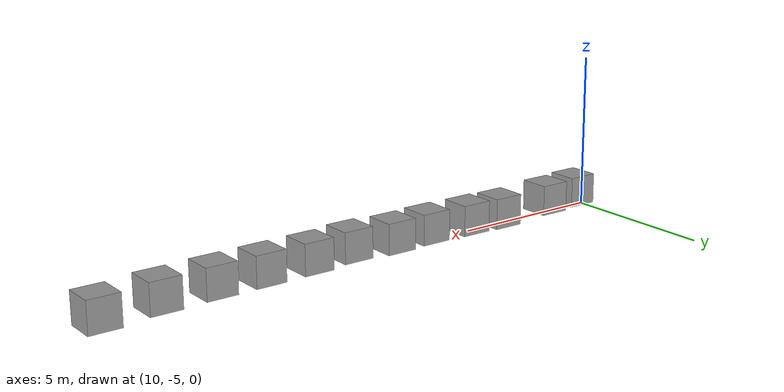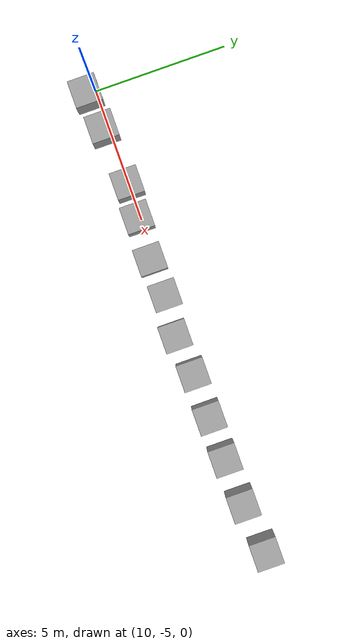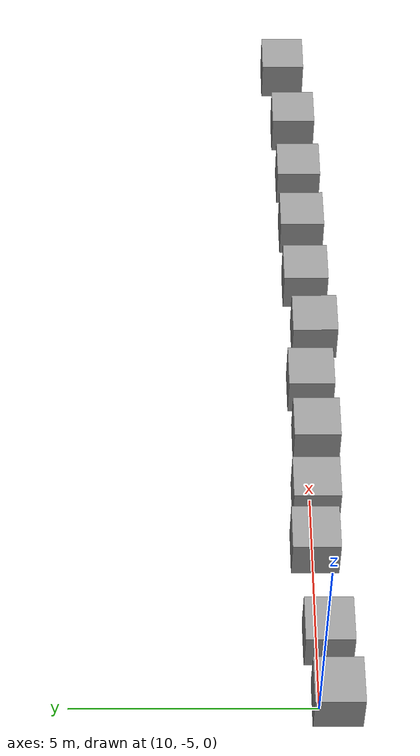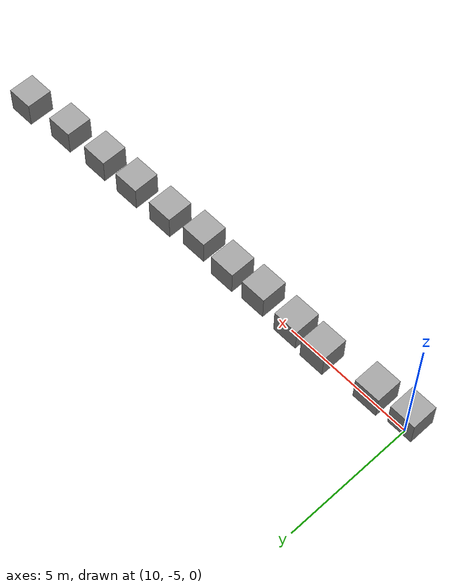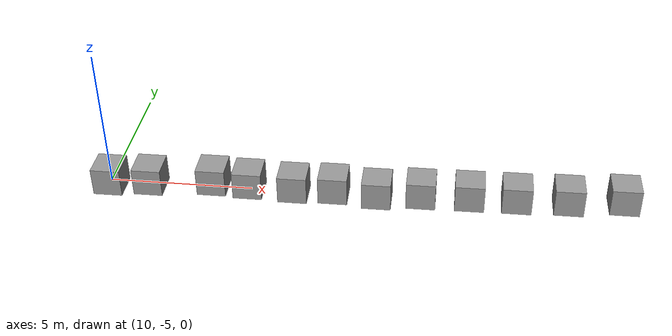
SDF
<sdf version="1.6">
 <world name="default">
  <model name="unit_box">
   <pose>25.8942 -4.95648 0.499998 -4e-06 -0 -0</pose>
   <link name="link">
    <inertial>
     <mass>1</mass>
     <inertia>
      <ixx>0.166667</ixx>
      <ixy>0</ixy>
      <ixz>0</ixz>
      <iyy>0.166667</iyy>
      <iyz>0</iyz>
      <izz>0.166667</izz>
     </inertia>
    </inertial>
    <collision name="collision"><geometry><box><size>1 1 1</size></box></geometry></collision>
    <visual name="visual">
     <geometry><box><size>1 1 1</size></box></geometry>
     <material>
      <script><name>Gazebo/Grey</name><uri>file://media/materials/scripts/gazebo.material</uri></script>
     </material>
    </visual>
   </link>
  </model>
  <model name="unit_box_0">
   <pose>24.1455 -5.02601 0.499998 -4e-06 -0 -0</pose>
   <link name="link">
    <inertial>
     <mass>1</mass>
     <inertia>
      <ixx>0.166667</ixx>
      <ixy>0</ixy>
      <ixz>0</ixz>
      <iyy>0.166667</iyy>
      <iyz>0</iyz>
      <izz>0.166667</izz>
     </inertia>
    </inertial>
    <collision name="collision"><geometry><box><size>1 1 1</size></box></geometry></collision>
    <visual name="visual">
     <geometry><box><size>1 1 1</size></box></geometry>
     <material>
      <script><name>Gazebo/Grey</name><uri>file://media/materials/scripts/gazebo.material</uri></script>
     </material>
    </visual>
   </link>
  </model>
  <model name="unit_box_1">
   <pose>22.5501 -5.05224 0.499998 -4e-06 0 0.00517</pose>
   <link name="link">
    <inertial>
     <mass>1</mass>
     <inertia>
      <ixx>0.166667</ixx>
      <ixy>0</ixy>
      <ixz>0</ixz>
      <iyy>0.166667</iyy>
      <iyz>0</iyz>
      <izz>0.166667</izz>
     </inertia>
    </inertial>
    <collision name="collision"><geometry><box><size>1 1 1</size></box></geometry></collision>
    <visual name="visual">
     <geometry><box><size>1 1 1</size></box></geometry>
     <material>
      <script><name>Gazebo/Grey</name><uri>file://media/materials/scripts/gazebo.material</uri></script>
     </material>
    </visual>
   </link>
  </model>
  <model name="unit_box_2">
   <pose>20.9027 -5.08237 0.499998 -4e-06 -0 -0</pose>
   <link name="link">
    <inertial>
     <mass>1</mass>
     <inertia>
      <ixx>0.166667</ixx>
      <ixy>0</ixy>
      <ixz>0</ixz>
      <iyy>0.166667</iyy>
      <iyz>0</iyz>
      <izz>0.166667</izz>
     </inertia>
    </inertial>
    <collision name="collision"><geometry><box><size>1 1 1</size></box></geometry></collision>
    <visual name="visual">
     <geometry><box><size>1 1 1</size></box></geometry>
     <material>
      <script><name>Gazebo/Grey</name><uri>file://media/materials/scripts/gazebo.material</uri></script>
     </material>
    </visual>
   </link>
  </model>
  <model name="unit_box_3">
   <pose>19.3978 -5.23629 0.499998 -4e-06 -0 -0</pose>
   <link name="link">
    <inertial>
     <mass>1</mass>
     <inertia>
      <ixx>0.166667</ixx>
      <ixy>0</ixy>
      <ixz>0</ixz>
      <iyy>0.166667</iyy>
      <iyz>0</iyz>
      <izz>0.166667</izz>
     </inertia>
    </inertial>
    <collision name="collision"><geometry><box><size>1 1 1</size></box></geometry></collision>
    <visual name="visual">
     <geometry><box><size>1 1 1</size></box></geometry>
     <material>
      <script><name>Gazebo/Grey</name><uri>file://media/materials/scripts/gazebo.material</uri></script>
     </material>
    </visual>
   </link>
  </model>
  <model name="unit_box_4">
   <pose>17.8974 -5.09897 0.499998 -4e-06 -0 -0</pose>
   <link name="link">
    <inertial>
     <mass>1</mass>
     <inertia>
      <ixx>0.166667</ixx>
      <ixy>0</ixy>
      <ixz>0</ixz>
      <iyy>0.166667</iyy>
      <iyz>0</iyz>
      <izz>0.166667</izz>
     </inertia>
    </inertial>
    <collision name="collision"><geometry><box><size>1 1 1</size></box></geometry></collision>
    <visual name="visual">
     <geometry><box><size>1 1 1</size></box></geometry>
     <material>
      <script><name>Gazebo/Grey</name><uri>file://media/materials/scripts/gazebo.material</uri></script>
     </material>
    </visual>
   </link>
  </model>
  <model name="unit_box_5">
   <pose>16.5148 -5.17045 0.499998 -4e-06 -0 -0</pose>
   <link name="link">
    <inertial>
     <mass>1</mass>
     <inertia>
      <ixx>0.166667</ixx>
      <ixy>0</ixy>
      <ixz>0</ixz>
      <iyy>0.166667</iyy>
      <iyz>0</iyz>
      <izz>0.166667</izz>
     </inertia>
    </inertial>
    <collision name="collision"><geometry><box><size>1 1 1</size></box></geometry></collision>
    <visual name="visual">
     <geometry><box><size>1 1 1</size></box></geometry>
     <material>
      <script><name>Gazebo/Grey</name><uri>file://media/materials/scripts/gazebo.material</uri></script>
     </material>
    </visual>
   </link>
  </model>
  <model name="unit_box_6">
   <pose>14.9469 -5.107 0.499998 -4e-06 -0 -0</pose>
   <link name="link">
    <inertial>
     <mass>1</mass>
     <inertia>
      <ixx>0.166667</ixx>
      <ixy>0</ixy>
      <ixz>0</ixz>
      <iyy>0.166667</iyy>
      <iyz>0</iyz>
      <izz>0.166667</izz>
     </inertia>
    </inertial>
    <collision name="collision"><geometry><box><size>1 1 1</size></box></geometry></collision>
    <visual name="visual">
     <geometry><box><size>1 1 1</size></box></geometry>
     <material>
      <script><name>Gazebo/Grey</name><uri>file://media/materials/scripts/gazebo.material</uri></script>
     </material>
    </visual>
   </link>
  </model>
  <model name="unit_box_7">
   <pose>13.6765 -5.04048 0.499998 -4e-06 -0 -0.001557</pose>
   <link name="link">
    <inertial>
     <mass>1</mass>
     <inertia>
      <ixx>0.166667</ixx>
      <ixy>0</ixy>
      <ixz>0</ixz>
      <iyy>0.166667</iyy>
      <iyz>0</iyz>
      <izz>0.166667</izz>
     </inertia>
    </inertial>
    <collision name="collision"><geometry><box><size>1 1 1</size></box></geometry></collision>
    <visual name="visual">
     <geometry><box><size>1 1 1</size></box></geometry>
     <material>
      <script><name>Gazebo/Grey</name><uri>file://media/materials/scripts/gazebo.material</uri></script>
     </material>
    </visual>
   </link>
  </model>
  <model name="unit_box_8">
   <pose>11.491 -5.22335 0.499998 -4e-06 -0 -0</pose>
   <link name="link">
    <inertial>
     <mass>1</mass>
     <inertia>
      <ixx>0.166667</ixx>
      <ixy>0</ixy>
      <ixz>0</ixz>
      <iyy>0.166667</iyy>
      <iyz>0</iyz>
      <izz>0.166667</izz>
     </inertia>
    </inertial>
    <collision name="collision"><geometry><box><size>1 1 1</size></box></geometry></collision>
    <visual name="visual">
     <geometry><box><size>1 1 1</size></box></geometry>
     <material>
      <script><name>Gazebo/Grey</name><uri>file://media/materials/scripts/gazebo.material</uri></script>
     </material>
    </visual>
   </link>
  </model>
  <model name="unit_box_9">
   <pose>10.1067 -5.35342 0.499998 -4e-06 -0 -0</pose>
   <link name="link">
    <inertial>
     <mass>1</mass>
     <inertia>
      <ixx>0.166667</ixx>
      <ixy>0</ixy>
      <ixz>0</ixz>
      <iyy>0.166667</iyy>
      <iyz>0</iyz>
      <izz>0.166667</izz>
     </inertia>
    </inertial>
    <collision name="collision"><geometry><box><size>1 1 1</size></box></geometry></collision>
    <visual name="visual">
     <geometry><box><size>1 1 1</size></box></geometry>
     <material>
      <script><name>Gazebo/Grey</name><uri>file://media/materials/scripts/gazebo.material</uri></script>
     </material>
    </visual>
   </link>
  </model>
  <model name="unit_box_11">
   <pose>27.7718 -4.75526 0.499998 -4e-06 -0 -0</pose>
   <link name="link">
    <inertial>
     <mass>1</mass>
     <inertia>
      <ixx>0.166667</ixx>
      <ixy>0</ixy>
      <ixz>0</ixz>
      <iyy>0.166667</iyy>
      <iyz>0</iyz>
      <izz>0.166667</izz>
     </inertia>
    </inertial>
    <collision name="collision"><geometry><box><size>1 1 1</size></box></geometry></collision>
    <visual name="visual">
     <geometry><box><size>1 1 1</size></box></geometry>
     <material>
      <script><name>Gazebo/Grey</name><uri>file://media/materials/scripts/gazebo.material</uri></script>
     </material>
    </visual>
   </link>
  </model>
  <model name="actor50_collision_model">
   <pose>0 0 -100 0 0 0</pose>
   <static>true</static>
   <link name="link">
    <collision name="link">
     <pose>0 -0.18 0.00 1.57 0 0</pose>
     <geometry><cylinder><radius>0.6</radius><length>1.8</length></cylinder></geometry>
    </collision>
   </link>
  </model>
  <model name="actor51_collision_model">
   <pose>0 0 -100 0 0 0</pose>
   <static>true</static>
   <link name="link">
    <collision name="link">
     <pose>0 -0.18 0.00 1.57 0 0</pose>
     <geometry><cylinder><radius>0.6</radius><length>1.8</length></cylinder></geometry>
    </collision>
   </link>
  </model>
  <model name="actor52_collision_model">
   <pose>0 0 -100 0 0 0</pose>
   <static>true</static>
   <link name="link">
    <collision name="link">
     <pose>0 -0.18 0.00 1.57 0 0</pose>
     <geometry><cylinder><radius>0.6</radius><length>1.8</length></cylinder></geometry>
    </collision>
   </link>
  </model>
  <model name="actor53_collision_model">
   <pose>0 0 -100 0 0 0</pose>
   <static>true</static>
   <link name="link">
    <collision name="link">
     <pose>0 -0.18 0.00 1.57 0 0</pose>
     <geometry><cylinder><radius>0.6</radius><length>1.8</length></cylinder></geometry>
    </collision>
   </link>
  </model>
  <model name="actor54_collision_model">
   <pose>0 0 -100 0 0 0</pose>
   <static>true</static>
   <link name="link">
    <collision name="link">
     <pose>0 -0.18 0.00 1.57 0 0</pose>
     <geometry><cylinder><radius>0.6</radius><length>1.8</length></cylinder></geometry>
    </collision>
   </link>
  </model>
  <model name="actor55_collision_model">
   <pose>0 0 -100 0 0 0</pose>
   <static>true</static>
   <link name="link">
    <collision name="link">
     <pose>0 -0.18 0.00 1.57 0 0</pose>
     <geometry><cylinder><radius>0.6</radius><length>1.8</length></cylinder></geometry>
    </collision>
   </link>
  </model>
  <model name="actor56_collision_model">
   <pose>0 0 -100 0 0 0</pose>
   <static>true</static>
   <link name="link">
    <collision name="link">
     <pose>0 -0.18 0.00 1.57 0 0</pose>
     <geometry><cylinder><radius>0.6</radius><length>1.8</length></cylinder></geometry>
    </collision>
   </link>
  </model>
  <model name="actor57_collision_model">
   <pose>0 0 -100 0 0 0</pose>
   <static>true</static>
   <link name="link">
    <collision name="link">
     <pose>0 -0.18 0.00 1.57 0 0</pose>
     <geometry><cylinder><radius>0.6</radius><length>1.8</length></cylinder></geometry>
    </collision>
   </link>
  </model>
  <model name="actor58_collision_model">
   <pose>0 0 -100 0 0 0</pose>
   <static>true</static>
   <link name="link">
    <collision name="link">
     <pose>0 -0.18 0.00 1.57 0 0</pose>
     <geometry><cylinder><radius>0.6</radius><length>1.8</length></cylinder></geometry>
    </collision>
   </link>
  </model>
 </world>
</sdf>
